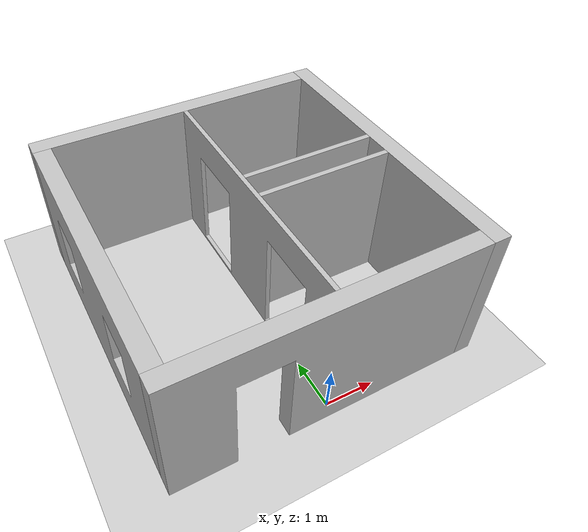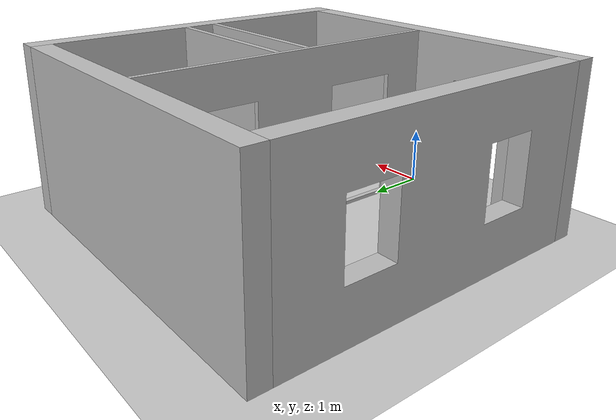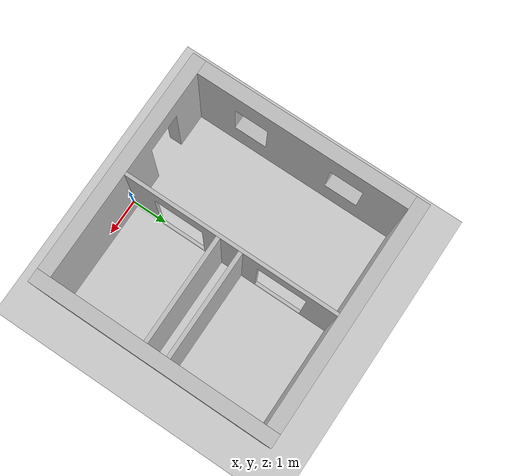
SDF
<sdf version="1.6">
 <world name="Example_PCD_world">
  <include><uri>model://ground_plane</uri></include>
  <include><uri>model://sun</uri></include>
  <physics type="ode">
   <real_time_update_rate>1000.0</real_time_update_rate>
   <max_step_size>0.001</max_step_size>
   <real_time_factor>1</real_time_factor>
   <ode>
    <solver>
     <type>quick</type>
     <iters>150</iters>
     <precon_iters>0</precon_iters>
     <sor>1.4</sor>
     <use_dynamic_moi_rescaling>1</use_dynamic_moi_rescaling>
    </solver>
    <constraints>
     <cfm>0.00001</cfm>
     <erp>0.2</erp>
     <contact_max_correcting_vel>2000.0</contact_max_correcting_vel>
     <contact_surface_layer>0.01</contact_surface_layer>
    </constraints>
   </ode>
  </physics>
  <model name="IfcWall_3_Sc93izfEuuDAiaR0_6h3">
   <static>true</static>
   <link name="link">
    <collision name="collision">
     <geometry>
      <mesh>
       <uri>src/robot_gazebo/worlds/Example_PCD_meshes/IfcWall_3_Sc93izfEuuDAiaR0_6h3.obj</uri>
       <scale>1 1 1</scale>
      </mesh>
     </geometry>
    </collision>
    <visual name="visual">
     <geometry>
      <mesh>
       <uri>src/robot_gazebo/worlds/Example_PCD_meshes/IfcWall_3_Sc93izfEuuDAiaR0_6h3.obj</uri>
       <scale>1 1 1</scale>
      </mesh>
     </geometry>
     <material><ambient>0.70 0.70 0.70 1</ambient><diffuse>0.75 0.75 0.75 1</diffuse></material>
    </visual>
   </link>
  </model>
  <model name="IfcWall_3S3VgMDFLDiPHeIJPk5HIn">
   <static>true</static>
   <link name="link">
    <collision name="collision">
     <geometry>
      <mesh>
       <uri>src/robot_gazebo/worlds/Example_PCD_meshes/IfcWall_3S3VgMDFLDiPHeIJPk5HIn.obj</uri>
       <scale>1 1 1</scale>
      </mesh>
     </geometry>
    </collision>
    <visual name="visual">
     <geometry>
      <mesh>
       <uri>src/robot_gazebo/worlds/Example_PCD_meshes/IfcWall_3S3VgMDFLDiPHeIJPk5HIn.obj</uri>
       <scale>1 1 1</scale>
      </mesh>
     </geometry>
     <material><ambient>0.70 0.70 0.70 1</ambient><diffuse>0.75 0.75 0.75 1</diffuse></material>
    </visual>
   </link>
  </model>
  <model name="IfcWall_3S3VgMDFLDiPHeIJPk5HTj">
   <static>true</static>
   <link name="link">
    <collision name="collision">
     <geometry>
      <mesh>
       <uri>src/robot_gazebo/worlds/Example_PCD_meshes/IfcWall_3S3VgMDFLDiPHeIJPk5HTj.obj</uri>
       <scale>1 1 1</scale>
      </mesh>
     </geometry>
    </collision>
    <visual name="visual">
     <geometry>
      <mesh>
       <uri>src/robot_gazebo/worlds/Example_PCD_meshes/IfcWall_3S3VgMDFLDiPHeIJPk5HTj.obj</uri>
       <scale>1 1 1</scale>
      </mesh>
     </geometry>
     <material><ambient>0.70 0.70 0.70 1</ambient><diffuse>0.75 0.75 0.75 1</diffuse></material>
    </visual>
   </link>
  </model>
  <model name="IfcWall_3S3VgMDFLDiPHeIJPk5HSc">
   <static>true</static>
   <link name="link">
    <collision name="collision">
     <geometry>
      <mesh>
       <uri>src/robot_gazebo/worlds/Example_PCD_meshes/IfcWall_3S3VgMDFLDiPHeIJPk5HSc.obj</uri>
       <scale>1 1 1</scale>
      </mesh>
     </geometry>
    </collision>
    <visual name="visual">
     <geometry>
      <mesh>
       <uri>src/robot_gazebo/worlds/Example_PCD_meshes/IfcWall_3S3VgMDFLDiPHeIJPk5HSc.obj</uri>
       <scale>1 1 1</scale>
      </mesh>
     </geometry>
     <material><ambient>0.70 0.70 0.70 1</ambient><diffuse>0.75 0.75 0.75 1</diffuse></material>
    </visual>
   </link>
  </model>
  <model name="IfcWall_20rBv4HojAY8M3avWLHAgu">
   <static>true</static>
   <link name="link">
    <collision name="collision">
     <geometry>
      <mesh>
       <uri>src/robot_gazebo/worlds/Example_PCD_meshes/IfcWall_20rBv4HojAY8M3avWLHAgu.obj</uri>
       <scale>1 1 1</scale>
      </mesh>
     </geometry>
    </collision>
    <visual name="visual">
     <geometry>
      <mesh>
       <uri>src/robot_gazebo/worlds/Example_PCD_meshes/IfcWall_20rBv4HojAY8M3avWLHAgu.obj</uri>
       <scale>1 1 1</scale>
      </mesh>
     </geometry>
     <material><ambient>0.70 0.70 0.70 1</ambient><diffuse>0.75 0.75 0.75 1</diffuse></material>
    </visual>
   </link>
  </model>
  <model name="IfcWall_20rBv4HojAY8M3avWLHAad">
   <static>true</static>
   <link name="link">
    <collision name="collision">
     <geometry>
      <mesh>
       <uri>src/robot_gazebo/worlds/Example_PCD_meshes/IfcWall_20rBv4HojAY8M3avWLHAad.obj</uri>
       <scale>1 1 1</scale>
      </mesh>
     </geometry>
    </collision>
    <visual name="visual">
     <geometry>
      <mesh>
       <uri>src/robot_gazebo/worlds/Example_PCD_meshes/IfcWall_20rBv4HojAY8M3avWLHAad.obj</uri>
       <scale>1 1 1</scale>
      </mesh>
     </geometry>
     <material><ambient>0.70 0.70 0.70 1</ambient><diffuse>0.75 0.75 0.75 1</diffuse></material>
    </visual>
   </link>
  </model>
  <model name="IfcWall_1iDZV_Brn0Z9GW0EFhIoO4">
   <static>true</static>
   <link name="link">
    <collision name="collision">
     <geometry>
      <mesh>
       <uri>src/robot_gazebo/worlds/Example_PCD_meshes/IfcWall_1iDZV_Brn0Z9GW0EFhIoO4.obj</uri>
       <scale>1 1 1</scale>
      </mesh>
     </geometry>
    </collision>
    <visual name="visual">
     <geometry>
      <mesh>
       <uri>src/robot_gazebo/worlds/Example_PCD_meshes/IfcWall_1iDZV_Brn0Z9GW0EFhIoO4.obj</uri>
       <scale>1 1 1</scale>
      </mesh>
     </geometry>
     <material><ambient>0.70 0.70 0.70 1</ambient><diffuse>0.75 0.75 0.75 1</diffuse></material>
    </visual>
   </link>
  </model>
 </world>
</sdf>
